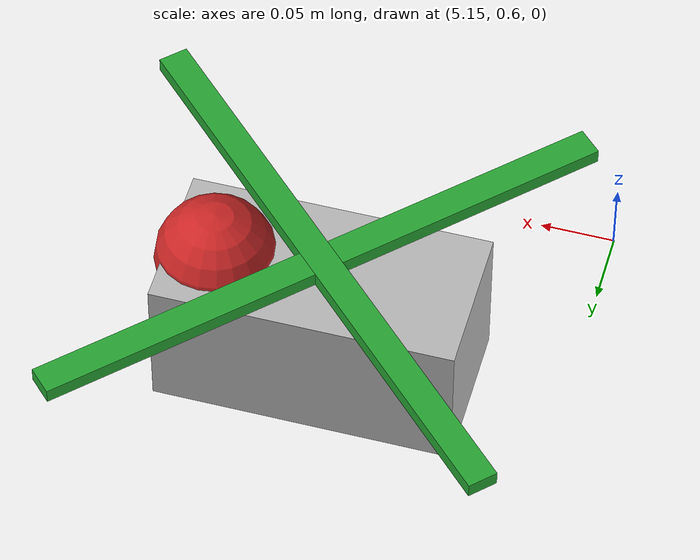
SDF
<sdf version="1.5">
 <world name="default">
  <model name="rotor_5">
   <pose>5.30996 0.754111 0.05 0 -0 0</pose>
   <link name="link">
    <sensor name="gps" type="gps">
     <gps>
      <position_sensing>
       <horizontal>
        <noise type="gaussian_quantized">
         <mean>0</mean>
         <stddev>4</stddev>
         <bias_mean>0</bias_mean>
         <bias_stddev>0</bias_stddev>
         <precision>0.001</precision>
        </noise>
       </horizontal>
       <vertical>
        <noise type="gaussian_quantized">
         <mean>0</mean>
         <stddev>8</stddev>
         <bias_mean>0</bias_mean>
         <bias_stddev>0</bias_stddev>
         <precision>0.01</precision>
        </noise>
       </vertical>
      </position_sensing>
      <velocity_sensing>
       <horizontal>
        <noise type="gaussian_quantized">
         <mean>0</mean>
         <stddev>4</stddev>
         <bias_mean>0</bias_mean>
         <bias_stddev>0</bias_stddev>
         <precision>0.001</precision>
        </noise>
       </horizontal>
       <vertical>
        <noise type="gaussian_quantized">
         <mean>0</mean>
         <stddev>8</stddev>
         <bias_mean>0</bias_mean>
         <bias_stddev>0</bias_stddev>
         <precision>0.01</precision>
        </noise>
       </vertical>
      </velocity_sensing>
     </gps>
     <always_on>1</always_on>
    </sensor>
    <sensor name="imu" type="imu">
     <imu>
      <angular_velocity>
       <x>
        <noise type="gaussian">
         <mean>0</mean>
         <stddev>0.0002</stddev>
         <bias_mean>7.5e-06</bias_mean>
         <bias_stddev>8e-07</bias_stddev>
        </noise>
       </x>
       <y>
        <noise type="gaussian">
         <mean>0</mean>
         <stddev>0.0002</stddev>
         <bias_mean>7.5e-06</bias_mean>
         <bias_stddev>8e-07</bias_stddev>
        </noise>
       </y>
       <z>
        <noise type="gaussian">
         <mean>0</mean>
         <stddev>0.0002</stddev>
         <bias_mean>7.5e-06</bias_mean>
         <bias_stddev>8e-07</bias_stddev>
        </noise>
       </z>
      </angular_velocity>
      <linear_acceleration>
       <x>
        <noise type="gaussian">
         <mean>0</mean>
         <stddev>0.0002</stddev>
         <bias_mean>7.5e-06</bias_mean>
         <bias_stddev>8e-07</bias_stddev>
        </noise>
       </x>
       <y>
        <noise type="gaussian">
         <mean>0</mean>
         <stddev>0.0002</stddev>
         <bias_mean>7.5e-06</bias_mean>
         <bias_stddev>8e-07</bias_stddev>
        </noise>
       </y>
       <z>
        <noise type="gaussian">
         <mean>0</mean>
         <stddev>0.0002</stddev>
         <bias_mean>7.5e-06</bias_mean>
         <bias_stddev>8e-07</bias_stddev>
        </noise>
       </z>
      </linear_acceleration>
     </imu>
     <always_on>1</always_on>
    </sensor>
    <sensor name="camera" type="logical_camera">
     <logical_camera>
      <near>0.1</near>
      <far>50</far>
      <horizontal_fov>1.4656</horizontal_fov>
      <aspect_ratio>1.778</aspect_ratio>
     </logical_camera>
     <visualize>0</visualize>
     <always_on>1</always_on>
    </sensor>
    <kinematic>1</kinematic>
    <gravity>0</gravity>
    <collision name="collision"><geometry><box><size>0.2 0.1 0.1</size></box></geometry></collision>
    <visual name="visual"><geometry><box><size>0.2 0.1 0.1</size></box></geometry></visual>
    <visual name="visual_front">
     <pose>0.07 0 0.04 0 -0 0</pose>
     <geometry><sphere><radius>0.04</radius></sphere></geometry>
     <material><script><name>Gazebo/Red</name><uri>__default__</uri></script></material>
    </visual>
    <visual name="visual_blade1">
     <pose>0 0 0.055 0 -0 0.78539</pose>
     <geometry><box><size>0.4 0.02 0.01</size></box></geometry>
     <material><script><name>Gazebo/Green</name><uri>__default__</uri></script></material>
    </visual>
    <visual name="visual_blade2">
     <pose>0 0 0.055 0 -0 2.3562</pose>
     <geometry><box><size>0.4 0.02 0.01</size></box></geometry>
     <material><script><name>Gazebo/Green</name><uri>__default__</uri></script></material>
    </visual>
    <inertial>
     <inertia><ixx>1</ixx><ixy>0</ixy><ixz>0</ixz><iyy>1</iyy><iyz>0</iyz><izz>1</izz></inertia>
     <mass>1</mass>
    </inertial>
   </link>
   <plugin name="swarm_controller_rotor_5" filename="libTeamControllerPlugin.so">
    <type>rotor</type>
    <launch_vehicle>ground_5</launch_vehicle>
    <camera>link::camera</camera>
    <gps>link::gps</gps>
    <imu>link::imu</imu>
    <address>192.168.3.6</address>
    <num_messages>1</num_messages>
    <swarm_search_area>
     <min_relative_latitude_deg>-0.01</min_relative_latitude_deg>
     <max_relative_latitude_deg>0.01</max_relative_latitude_deg>
     <min_relative_longitude_deg>-0.01</min_relative_longitude_deg>
     <max_relative_longitude_deg>0.01</max_relative_longitude_deg>
    </swarm_search_area>
    <battery>
     <capacity>3500</capacity>
     <consumption>0</consumption>
     <consumption_factor>0.8</consumption_factor>
    </battery>
   </plugin>
  </model>
 </world>
</sdf>
